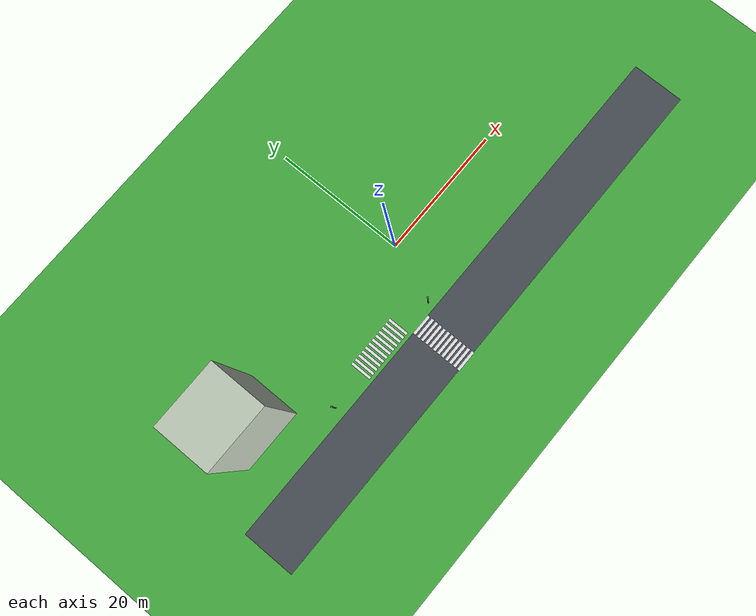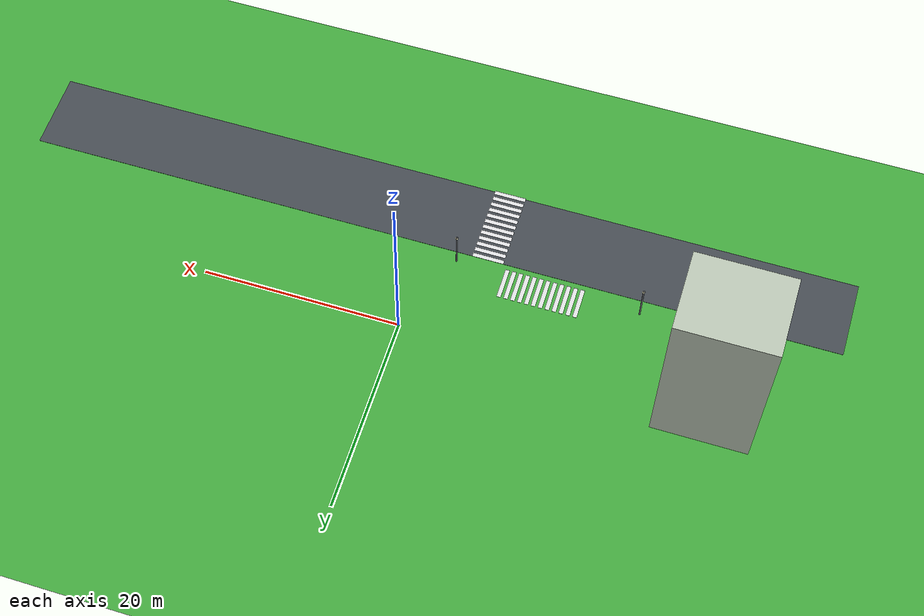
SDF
<sdf version="1.10">
 <world name="city_second">
  <model name="ground_plane">
   <static>true</static>
   <link name="link">
    <collision name="collision">
     <geometry><plane><normal>0 0 1</normal><size>300 300</size></plane></geometry>
    </collision>
    <visual name="visual">
     <geometry><plane><normal>0 0 1</normal><size>300 300</size></plane></geometry>
     <material>
      <ambient>0.280000001 0.689999998 0.25999999 1</ambient>
      <diffuse>0.280000001 0.689999998 0.25999999 1</diffuse>
      <specular>0.0299999993 0.0299999993 0.0299999993 1</specular>
     </material>
    </visual>
    <inertial>
     <mass>1</mass>
     <inertia><ixx>1</ixx><ixy>0</ixy><ixz>0</ixz><iyy>1</iyy><iyz>0</iyz><izz>1</izz></inertia>
    </inertial>
   </link>
  </model>
  <model name="house_3_3_1">
   <static>true</static>
   <pose>-30.574116478479805 -0.61842077573190934 9.5 0 0 0</pose>
   <link name="link">
    <collision name="collision"><geometry><box><size>9.5 8 19</size></box></geometry></collision>
    <visual name="visual">
     <geometry><box><size>9.5 8 19</size></box></geometry>
     <material>
      <ambient>0.75999999 0.810000002 0.74000001 1</ambient>
      <diffuse>0.75999999 0.810000002 0.74000001 1</diffuse>
      <specular>0.0299999993 0.0299999993 0.0299999993 1</specular>
     </material>
    </visual>
    <inertial>
     <mass>1</mass>
     <inertia><ixx>1</ixx><ixy>0</ixy><ixz>0</ixz><iyy>1</iyy><iyz>0</iyz><izz>1</izz></inertia>
    </inertial>
   </link>
  </model>
  <model name="crosswalk_v_2_1_east_5_5">
   <static>true</static>
   <pose>-6.1313155356680635 -13.727409662505211 0.017000000923871994 0 0 0</pose>
   <link name="stripe_1">
    <collision name="collision">
     <geometry><box><size>3.2000000000000002 0.41999999999999998 0.01</size></box></geometry>
    </collision>
    <visual name="visual">
     <geometry><box><size>3.2000000000000002 0.41999999999999998 0.01</size></box></geometry>
     <material>
      <ambient>0.920000017 0.920000017 0.930000007 1</ambient>
      <diffuse>0.920000017 0.920000017 0.930000007 1</diffuse>
      <specular>0.0299999993 0.0299999993 0.0299999993 1</specular>
     </material>
    </visual>
    <pose>0 -3.8500000000000001 0 0 0 0</pose>
    <inertial>
     <mass>1</mass>
     <inertia><ixx>1</ixx><ixy>0</ixy><ixz>0</ixz><iyy>1</iyy><iyz>0</iyz><izz>1</izz></inertia>
    </inertial>
   </link>
   <link name="stripe_2">
    <collision name="collision">
     <geometry><box><size>3.2000000000000002 0.41999999999999998 0.01</size></box></geometry>
    </collision>
    <visual name="visual">
     <geometry><box><size>3.2000000000000002 0.41999999999999998 0.01</size></box></geometry>
     <material>
      <ambient>0.920000017 0.920000017 0.930000007 1</ambient>
      <diffuse>0.920000017 0.920000017 0.930000007 1</diffuse>
      <specular>0.0299999993 0.0299999993 0.0299999993 1</specular>
     </material>
    </visual>
    <pose>0 -3.1500000000000004 0 0 0 0</pose>
    <inertial>
     <mass>1</mass>
     <inertia><ixx>1</ixx><ixy>0</ixy><ixz>0</ixz><iyy>1</iyy><iyz>0</iyz><izz>1</izz></inertia>
    </inertial>
   </link>
   <link name="stripe_3">
    <collision name="collision">
     <geometry><box><size>3.2000000000000002 0.41999999999999998 0.01</size></box></geometry>
    </collision>
    <visual name="visual">
     <geometry><box><size>3.2000000000000002 0.41999999999999998 0.01</size></box></geometry>
     <material>
      <ambient>0.920000017 0.920000017 0.930000007 1</ambient>
      <diffuse>0.920000017 0.920000017 0.930000007 1</diffuse>
      <specular>0.0299999993 0.0299999993 0.0299999993 1</specular>
     </material>
    </visual>
    <pose>0 -2.4500000000000011 0 0 0 0</pose>
    <inertial>
     <mass>1</mass>
     <inertia><ixx>1</ixx><ixy>0</ixy><ixz>0</ixz><iyy>1</iyy><iyz>0</iyz><izz>1</izz></inertia>
    </inertial>
   </link>
   <link name="stripe_4">
    <collision name="collision">
     <geometry><box><size>3.2000000000000002 0.41999999999999998 0.01</size></box></geometry>
    </collision>
    <visual name="visual">
     <geometry><box><size>3.2000000000000002 0.41999999999999998 0.01</size></box></geometry>
     <material>
      <ambient>0.920000017 0.920000017 0.930000007 1</ambient>
      <diffuse>0.920000017 0.920000017 0.930000007 1</diffuse>
      <specular>0.0299999993 0.0299999993 0.0299999993 1</specular>
     </material>
    </visual>
    <pose>0 -1.75 0 0 0 0</pose>
    <inertial>
     <mass>1</mass>
     <inertia><ixx>1</ixx><ixy>0</ixy><ixz>0</ixz><iyy>1</iyy><iyz>0</iyz><izz>1</izz></inertia>
    </inertial>
   </link>
   <link name="stripe_5">
    <collision name="collision">
     <geometry><box><size>3.2000000000000002 0.41999999999999998 0.01</size></box></geometry>
    </collision>
    <visual name="visual">
     <geometry><box><size>3.2000000000000002 0.41999999999999998 0.01</size></box></geometry>
     <material>
      <ambient>0.920000017 0.920000017 0.930000007 1</ambient>
      <diffuse>0.920000017 0.920000017 0.930000007 1</diffuse>
      <specular>0.0299999993 0.0299999993 0.0299999993 1</specular>
     </material>
    </visual>
    <pose>0 -1.0500000000000007 0 0 0 0</pose>
    <inertial>
     <mass>1</mass>
     <inertia><ixx>1</ixx><ixy>0</ixy><ixz>0</ixz><iyy>1</iyy><iyz>0</iyz><izz>1</izz></inertia>
    </inertial>
   </link>
   <link name="stripe_6">
    <collision name="collision">
     <geometry><box><size>3.2000000000000002 0.41999999999999998 0.01</size></box></geometry>
    </collision>
    <visual name="visual">
     <geometry><box><size>3.2000000000000002 0.41999999999999998 0.01</size></box></geometry>
     <material>
      <ambient>0.920000017 0.920000017 0.930000007 1</ambient>
      <diffuse>0.920000017 0.920000017 0.930000007 1</diffuse>
      <specular>0.0299999993 0.0299999993 0.0299999993 1</specular>
     </material>
    </visual>
    <pose>0 -0.34999999999999964 0 0 0 0</pose>
    <inertial>
     <mass>1</mass>
     <inertia><ixx>1</ixx><ixy>0</ixy><ixz>0</ixz><iyy>1</iyy><iyz>0</iyz><izz>1</izz></inertia>
    </inertial>
   </link>
   <link name="stripe_7">
    <collision name="collision">
     <geometry><box><size>3.2000000000000002 0.41999999999999998 0.01</size></box></geometry>
    </collision>
    <visual name="visual">
     <geometry><box><size>3.2000000000000002 0.41999999999999998 0.01</size></box></geometry>
     <material>
      <ambient>0.920000017 0.920000017 0.930000007 1</ambient>
      <diffuse>0.920000017 0.920000017 0.930000007 1</diffuse>
      <specular>0.0299999993 0.0299999993 0.0299999993 1</specular>
     </material>
    </visual>
    <pose>0 0.35000000000000142 0 0 0 0</pose>
    <inertial>
     <mass>1</mass>
     <inertia><ixx>1</ixx><ixy>0</ixy><ixz>0</ixz><iyy>1</iyy><iyz>0</iyz><izz>1</izz></inertia>
    </inertial>
   </link>
   <link name="stripe_8">
    <collision name="collision">
     <geometry><box><size>3.2000000000000002 0.41999999999999998 0.01</size></box></geometry>
    </collision>
    <visual name="visual">
     <geometry><box><size>3.2000000000000002 0.41999999999999998 0.01</size></box></geometry>
     <material>
      <ambient>0.920000017 0.920000017 0.930000007 1</ambient>
      <diffuse>0.920000017 0.920000017 0.930000007 1</diffuse>
      <specular>0.0299999993 0.0299999993 0.0299999993 1</specular>
     </material>
    </visual>
    <pose>0 1.0500000000000007 0 0 0 0</pose>
    <inertial>
     <mass>1</mass>
     <inertia><ixx>1</ixx><ixy>0</ixy><ixz>0</ixz><iyy>1</iyy><iyz>0</iyz><izz>1</izz></inertia>
    </inertial>
   </link>
   <link name="stripe_9">
    <collision name="collision">
     <geometry><box><size>3.2000000000000002 0.41999999999999998 0.01</size></box></geometry>
    </collision>
    <visual name="visual">
     <geometry><box><size>3.2000000000000002 0.41999999999999998 0.01</size></box></geometry>
     <material>
      <ambient>0.920000017 0.920000017 0.930000007 1</ambient>
      <diffuse>0.920000017 0.920000017 0.930000007 1</diffuse>
      <specular>0.0299999993 0.0299999993 0.0299999993 1</specular>
     </material>
    </visual>
    <pose>0 1.75 0 0 0 0</pose>
    <inertial>
     <mass>1</mass>
     <inertia><ixx>1</ixx><ixy>0</ixy><ixz>0</ixz><iyy>1</iyy><iyz>0</iyz><izz>1</izz></inertia>
    </inertial>
   </link>
   <link name="stripe_10">
    <collision name="collision">
     <geometry><box><size>3.2000000000000002 0.41999999999999998 0.01</size></box></geometry>
    </collision>
    <visual name="visual">
     <geometry><box><size>3.2000000000000002 0.41999999999999998 0.01</size></box></geometry>
     <material>
      <ambient>0.920000017 0.920000017 0.930000007 1</ambient>
      <diffuse>0.920000017 0.920000017 0.930000007 1</diffuse>
      <specular>0.0299999993 0.0299999993 0.0299999993 1</specular>
     </material>
    </visual>
    <pose>0 2.4499999999999993 0 0 0 0</pose>
    <inertial>
     <mass>1</mass>
     <inertia><ixx>1</ixx><ixy>0</ixy><ixz>0</ixz><iyy>1</iyy><iyz>0</iyz><izz>1</izz></inertia>
    </inertial>
   </link>
   <link name="stripe_11">
    <collision name="collision">
     <geometry><box><size>3.2000000000000002 0.41999999999999998 0.01</size></box></geometry>
    </collision>
    <visual name="visual">
     <geometry><box><size>3.2000000000000002 0.41999999999999998 0.01</size></box></geometry>
     <material>
      <ambient>0.920000017 0.920000017 0.930000007 1</ambient>
      <diffuse>0.920000017 0.920000017 0.930000007 1</diffuse>
      <specular>0.0299999993 0.0299999993 0.0299999993 1</specular>
     </material>
    </visual>
    <pose>0 3.1499999999999986 0 0 0 0</pose>
    <inertial>
     <mass>1</mass>
     <inertia><ixx>1</ixx><ixy>0</ixy><ixz>0</ixz><iyy>1</iyy><iyz>0</iyz><izz>1</izz></inertia>
    </inertial>
   </link>
   <link name="stripe_12">
    <collision name="collision">
     <geometry><box><size>3.2000000000000002 0.41999999999999998 0.01</size></box></geometry>
    </collision>
    <visual name="visual">
     <geometry><box><size>3.2000000000000002 0.41999999999999998 0.01</size></box></geometry>
     <material>
      <ambient>0.920000017 0.920000017 0.930000007 1</ambient>
      <diffuse>0.920000017 0.920000017 0.930000007 1</diffuse>
      <specular>0.0299999993 0.0299999993 0.0299999993 1</specular>
     </material>
    </visual>
    <pose>0 3.8500000000000014 0 0 0 0</pose>
    <inertial>
     <mass>1</mass>
     <inertia><ixx>1</ixx><ixy>0</ixy><ixz>0</ixz><iyy>1</iyy><iyz>0</iyz><izz>1</izz></inertia>
    </inertial>
   </link>
  </model>
  <model name="road_h_2_1">
   <static>true</static>
   <pose>0.20479929752364257 -13.668007517480602 0.0099999997764825821 0 0 0</pose>
   <link name="link">
    <collision name="collision"><geometry><box><size>84 8 0.02</size></box></geometry></collision>
    <visual name="visual">
     <geometry><box><size>84 8 0.02</size></box></geometry>
     <material>
      <ambient>0.289999992 0.310000002 0.340000004 1</ambient>
      <diffuse>0.289999992 0.310000002 0.340000004 1</diffuse>
      <specular>0.0299999993 0.0299999993 0.0299999993 1</specular>
     </material>
    </visual>
    <inertial>
     <mass>1</mass>
     <inertia><ixx>1</ixx><ixy>0</ixy><ixz>0</ixz><iyy>1</iyy><iyz>0</iyz><izz>1</izz></inertia>
    </inertial>
   </link>
  </model>
  <model name="crosswalk_h_1_1_south_7_4">
   <static>true</static>
   <pose>-12.188737780721313 -7.5394200007317487 0.017000000923871994 0 0 0</pose>
   <link name="stripe_1">
    <collision name="collision">
     <geometry><box><size>0.41999999999999998 3.2000000000000002 0.01</size></box></geometry>
    </collision>
    <visual name="visual">
     <geometry><box><size>0.41999999999999998 3.2000000000000002 0.01</size></box></geometry>
     <material>
      <ambient>0.920000017 0.920000017 0.930000007 1</ambient>
      <diffuse>0.920000017 0.920000017 0.930000007 1</diffuse>
      <specular>0.0299999993 0.0299999993 0.0299999993 1</specular>
     </material>
    </visual>
    <pose>-3.8500000000000001 0 0 0 0 0</pose>
    <inertial>
     <mass>1</mass>
     <inertia><ixx>1</ixx><ixy>0</ixy><ixz>0</ixz><iyy>1</iyy><iyz>0</iyz><izz>1</izz></inertia>
    </inertial>
   </link>
   <link name="stripe_2">
    <collision name="collision">
     <geometry><box><size>0.41999999999999998 3.2000000000000002 0.01</size></box></geometry>
    </collision>
    <visual name="visual">
     <geometry><box><size>0.41999999999999998 3.2000000000000002 0.01</size></box></geometry>
     <material>
      <ambient>0.920000017 0.920000017 0.930000007 1</ambient>
      <diffuse>0.920000017 0.920000017 0.930000007 1</diffuse>
      <specular>0.0299999993 0.0299999993 0.0299999993 1</specular>
     </material>
    </visual>
    <pose>-3.1500000000000004 0 0 0 0 0</pose>
    <inertial>
     <mass>1</mass>
     <inertia><ixx>1</ixx><ixy>0</ixy><ixz>0</ixz><iyy>1</iyy><iyz>0</iyz><izz>1</izz></inertia>
    </inertial>
   </link>
   <link name="stripe_3">
    <collision name="collision">
     <geometry><box><size>0.41999999999999998 3.2000000000000002 0.01</size></box></geometry>
    </collision>
    <visual name="visual">
     <geometry><box><size>0.41999999999999998 3.2000000000000002 0.01</size></box></geometry>
     <material>
      <ambient>0.920000017 0.920000017 0.930000007 1</ambient>
      <diffuse>0.920000017 0.920000017 0.930000007 1</diffuse>
      <specular>0.0299999993 0.0299999993 0.0299999993 1</specular>
     </material>
    </visual>
    <pose>-2.4499999999999993 0 0 0 0 0</pose>
    <inertial>
     <mass>1</mass>
     <inertia><ixx>1</ixx><ixy>0</ixy><ixz>0</ixz><iyy>1</iyy><iyz>0</iyz><izz>1</izz></inertia>
    </inertial>
   </link>
   <link name="stripe_4">
    <collision name="collision">
     <geometry><box><size>0.41999999999999998 3.2000000000000002 0.01</size></box></geometry>
    </collision>
    <visual name="visual">
     <geometry><box><size>0.41999999999999998 3.2000000000000002 0.01</size></box></geometry>
     <material>
      <ambient>0.920000017 0.920000017 0.930000007 1</ambient>
      <diffuse>0.920000017 0.920000017 0.930000007 1</diffuse>
      <specular>0.0299999993 0.0299999993 0.0299999993 1</specular>
     </material>
    </visual>
    <pose>-1.75 0 0 0 0 0</pose>
    <inertial>
     <mass>1</mass>
     <inertia><ixx>1</ixx><ixy>0</ixy><ixz>0</ixz><iyy>1</iyy><iyz>0</iyz><izz>1</izz></inertia>
    </inertial>
   </link>
   <link name="stripe_5">
    <collision name="collision">
     <geometry><box><size>0.41999999999999998 3.2000000000000002 0.01</size></box></geometry>
    </collision>
    <visual name="visual">
     <geometry><box><size>0.41999999999999998 3.2000000000000002 0.01</size></box></geometry>
     <material>
      <ambient>0.920000017 0.920000017 0.930000007 1</ambient>
      <diffuse>0.920000017 0.920000017 0.930000007 1</diffuse>
      <specular>0.0299999993 0.0299999993 0.0299999993 1</specular>
     </material>
    </visual>
    <pose>-1.0500000000000007 0 0 0 0 0</pose>
    <inertial>
     <mass>1</mass>
     <inertia><ixx>1</ixx><ixy>0</ixy><ixz>0</ixz><iyy>1</iyy><iyz>0</iyz><izz>1</izz></inertia>
    </inertial>
   </link>
   <link name="stripe_6">
    <collision name="collision">
     <geometry><box><size>0.41999999999999998 3.2000000000000002 0.01</size></box></geometry>
    </collision>
    <visual name="visual">
     <geometry><box><size>0.41999999999999998 3.2000000000000002 0.01</size></box></geometry>
     <material>
      <ambient>0.920000017 0.920000017 0.930000007 1</ambient>
      <diffuse>0.920000017 0.920000017 0.930000007 1</diffuse>
      <specular>0.0299999993 0.0299999993 0.0299999993 1</specular>
     </material>
    </visual>
    <pose>-0.34999999999999964 0 0 0 0 0</pose>
    <inertial>
     <mass>1</mass>
     <inertia><ixx>1</ixx><ixy>0</ixy><ixz>0</ixz><iyy>1</iyy><iyz>0</iyz><izz>1</izz></inertia>
    </inertial>
   </link>
   <link name="stripe_7">
    <collision name="collision">
     <geometry><box><size>0.41999999999999998 3.2000000000000002 0.01</size></box></geometry>
    </collision>
    <visual name="visual">
     <geometry><box><size>0.41999999999999998 3.2000000000000002 0.01</size></box></geometry>
     <material>
      <ambient>0.920000017 0.920000017 0.930000007 1</ambient>
      <diffuse>0.920000017 0.920000017 0.930000007 1</diffuse>
      <specular>0.0299999993 0.0299999993 0.0299999993 1</specular>
     </material>
    </visual>
    <pose>0.35000000000000142 0 0 0 0 0</pose>
    <inertial>
     <mass>1</mass>
     <inertia><ixx>1</ixx><ixy>0</ixy><ixz>0</ixz><iyy>1</iyy><iyz>0</iyz><izz>1</izz></inertia>
    </inertial>
   </link>
   <link name="stripe_8">
    <collision name="collision">
     <geometry><box><size>0.41999999999999998 3.2000000000000002 0.01</size></box></geometry>
    </collision>
    <visual name="visual">
     <geometry><box><size>0.41999999999999998 3.2000000000000002 0.01</size></box></geometry>
     <material>
      <ambient>0.920000017 0.920000017 0.930000007 1</ambient>
      <diffuse>0.920000017 0.920000017 0.930000007 1</diffuse>
      <specular>0.0299999993 0.0299999993 0.0299999993 1</specular>
     </material>
    </visual>
    <pose>1.0500000000000007 0 0 0 0 0</pose>
    <inertial>
     <mass>1</mass>
     <inertia><ixx>1</ixx><ixy>0</ixy><ixz>0</ixz><iyy>1</iyy><iyz>0</iyz><izz>1</izz></inertia>
    </inertial>
   </link>
   <link name="stripe_9">
    <collision name="collision">
     <geometry><box><size>0.41999999999999998 3.2000000000000002 0.01</size></box></geometry>
    </collision>
    <visual name="visual">
     <geometry><box><size>0.41999999999999998 3.2000000000000002 0.01</size></box></geometry>
     <material>
      <ambient>0.920000017 0.920000017 0.930000007 1</ambient>
      <diffuse>0.920000017 0.920000017 0.930000007 1</diffuse>
      <specular>0.0299999993 0.0299999993 0.0299999993 1</specular>
     </material>
    </visual>
    <pose>1.75 0 0 0 0 0</pose>
    <inertial>
     <mass>1</mass>
     <inertia><ixx>1</ixx><ixy>0</ixy><ixz>0</ixz><iyy>1</iyy><iyz>0</iyz><izz>1</izz></inertia>
    </inertial>
   </link>
   <link name="stripe_10">
    <collision name="collision">
     <geometry><box><size>0.41999999999999998 3.2000000000000002 0.01</size></box></geometry>
    </collision>
    <visual name="visual">
     <geometry><box><size>0.41999999999999998 3.2000000000000002 0.01</size></box></geometry>
     <material>
      <ambient>0.920000017 0.920000017 0.930000007 1</ambient>
      <diffuse>0.920000017 0.920000017 0.930000007 1</diffuse>
      <specular>0.0299999993 0.0299999993 0.0299999993 1</specular>
     </material>
    </visual>
    <pose>2.4499999999999993 0 0 0 0 0</pose>
    <inertial>
     <mass>1</mass>
     <inertia><ixx>1</ixx><ixy>0</ixy><ixz>0</ixz><iyy>1</iyy><iyz>0</iyz><izz>1</izz></inertia>
    </inertial>
   </link>
   <link name="stripe_11">
    <collision name="collision">
     <geometry><box><size>0.41999999999999998 3.2000000000000002 0.01</size></box></geometry>
    </collision>
    <visual name="visual">
     <geometry><box><size>0.41999999999999998 3.2000000000000002 0.01</size></box></geometry>
     <material>
      <ambient>0.920000017 0.920000017 0.930000007 1</ambient>
      <diffuse>0.920000017 0.920000017 0.930000007 1</diffuse>
      <specular>0.0299999993 0.0299999993 0.0299999993 1</specular>
     </material>
    </visual>
    <pose>3.1499999999999986 0 0 0 0 0</pose>
    <inertial>
     <mass>1</mass>
     <inertia><ixx>1</ixx><ixy>0</ixy><ixz>0</ixz><iyy>1</iyy><iyz>0</iyz><izz>1</izz></inertia>
    </inertial>
   </link>
   <link name="stripe_12">
    <collision name="collision">
     <geometry><box><size>0.41999999999999998 3.2000000000000002 0.01</size></box></geometry>
    </collision>
    <visual name="visual">
     <geometry><box><size>0.41999999999999998 3.2000000000000002 0.01</size></box></geometry>
     <material>
      <ambient>0.920000017 0.920000017 0.930000007 1</ambient>
      <diffuse>0.920000017 0.920000017 0.930000007 1</diffuse>
      <specular>0.0299999993 0.0299999993 0.0299999993 1</specular>
     </material>
    </visual>
    <pose>3.8500000000000014 0 0 0 0 0</pose>
    <inertial>
     <mass>1</mass>
     <inertia><ixx>1</ixx><ixy>0</ixy><ixz>0</ixz><iyy>1</iyy><iyz>0</iyz><izz>1</izz></inertia>
    </inertial>
   </link>
  </model>
  <model name="lamp_1_2_1">
   <static>true</static>
   <pose>-21.998222068005301 -8.1758490092042528 2.2000000476837158 0 0 0</pose>
   <link name="link">
    <collision name="collision">
     <geometry>
      <cylinder><radius>0.080000000000000002</radius><length>4.4000000000000004</length></cylinder>
     </geometry>
    </collision>
    <visual name="pole">
     <geometry>
      <cylinder><radius>0.080000000000000002</radius><length>4.4000000000000004</length></cylinder>
     </geometry>
     <material>
      <ambient>0.349999994 0.360000014 0.379999995 1</ambient>
      <diffuse>0.349999994 0.360000014 0.379999995 1</diffuse>
      <specular>0.0299999993 0.0299999993 0.0299999993 1</specular>
     </material>
    </visual>
    <visual name="lamp_head">
     <pose>0 0 2 0 0 0</pose>
     <geometry><sphere><radius>0.14000000000000001</radius></sphere></geometry>
     <material>
      <ambient>0.959999979 0.939999998 0.779999971 1</ambient>
      <diffuse>0.959999979 0.939999998 0.779999971 1</diffuse>
      <specular>0.0299999993 0.0299999993 0.0299999993 1</specular>
     </material>
    </visual>
    <inertial>
     <mass>1</mass>
     <inertia><ixx>1</ixx><ixy>0</ixy><ixz>0</ixz><iyy>1</iyy><iyz>0</iyz><izz>1</izz></inertia>
    </inertial>
   </link>
  </model>
  <model name="lamp_1_2_6">
   <static>true</static>
   <pose>-3.2090183882601053 -8.6416440827958674 2.2000000476837158 0 0 0</pose>
   <link name="link">
    <collision name="collision">
     <geometry>
      <cylinder><radius>0.080000000000000002</radius><length>4.4000000000000004</length></cylinder>
     </geometry>
    </collision>
    <visual name="pole">
     <geometry>
      <cylinder><radius>0.080000000000000002</radius><length>4.4000000000000004</length></cylinder>
     </geometry>
     <material>
      <ambient>0.349999994 0.360000014 0.379999995 1</ambient>
      <diffuse>0.349999994 0.360000014 0.379999995 1</diffuse>
      <specular>0.0299999993 0.0299999993 0.0299999993 1</specular>
     </material>
    </visual>
    <visual name="lamp_head">
     <pose>0 0 2 0 0 0</pose>
     <geometry><sphere><radius>0.14000000000000001</radius></sphere></geometry>
     <material>
      <ambient>0.959999979 0.939999998 0.779999971 1</ambient>
      <diffuse>0.959999979 0.939999998 0.779999971 1</diffuse>
      <specular>0.0299999993 0.0299999993 0.0299999993 1</specular>
     </material>
    </visual>
    <inertial>
     <mass>1</mass>
     <inertia><ixx>1</ixx><ixy>0</ixy><ixz>0</ixz><iyy>1</iyy><iyz>0</iyz><izz>1</izz></inertia>
    </inertial>
   </link>
  </model>
 </world>
</sdf>
